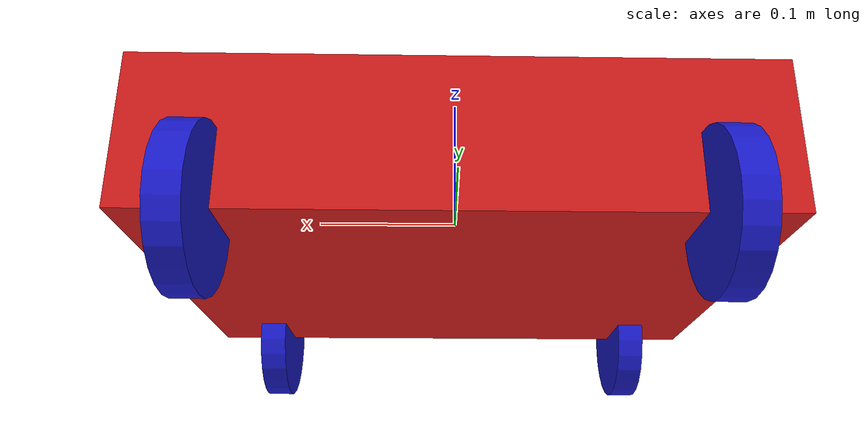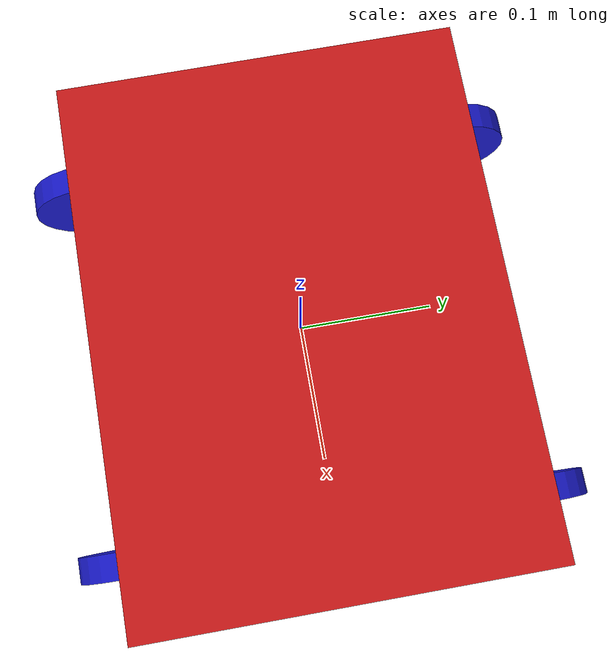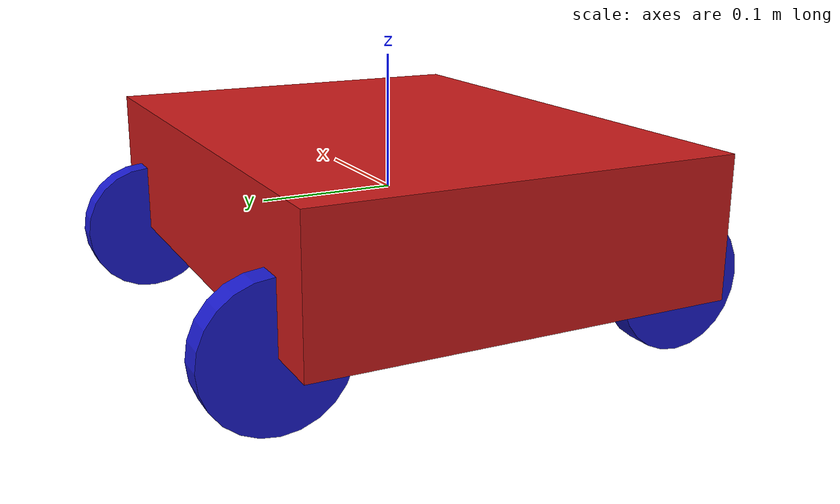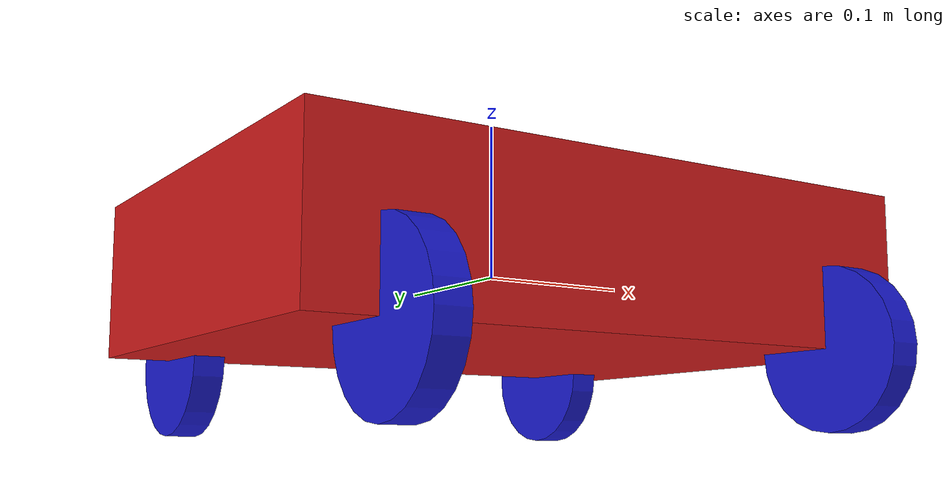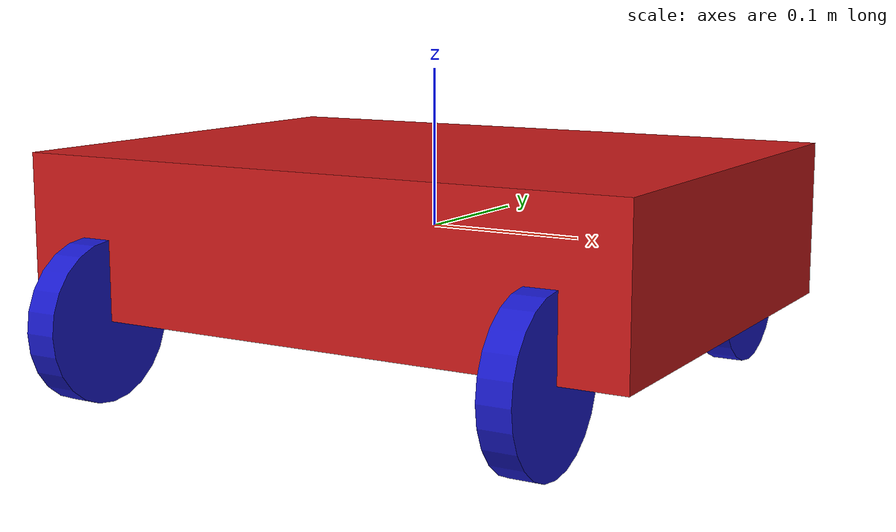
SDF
<?xml version="1.0" ?>
<sdf version="1.7">
  <model name="skid_steer_robot">
    <static>false</static>

    <!-- Base link -->
    <link name="base_link">
      <pose>0 0 0 0 0 0</pose>
      <collision name="base_collision">
        <geometry>
          <box>
            <size>0.4 0.3 0.1</size>
          </box>
        </geometry>
      </collision>
      <visual name="base_visual">
        <geometry>
          <box>
            <size>0.4 0.3 0.1</size>
          </box>
        </geometry>
        <material>
          <ambient>0.8 0.1 0.1 1.0</ambient>
          <diffuse>0.8 0.1 0.1 1.0</diffuse>
        </material>
      </visual>
      <inertial>
        <mass>10.0</mass>
        <inertia>
          <ixx>0.1</ixx>
          <ixy>0</ixy>
          <ixz>0</ixz>
          <iyy>0.1</iyy>
          <iyz>0</iyz>
          <izz>0.1</izz>
        </inertia>
      </inertial>
    </link>

    <!-- Wheels positioned relative to base -->
    <link name="front_left_wheel">
      <pose>0.15 0.15 -0.05 0 1.5708 0</pose>
      <collision name="front_left_wheel_collision">
        <geometry>
          <cylinder>
            <radius>0.05</radius>
            <length>0.02</length>
          </cylinder>
        </geometry>
      </collision>
      <visual name="front_left_wheel_visual">
        <geometry>
          <cylinder>
            <radius>0.05</radius>
            <length>0.02</length>
          </cylinder>
        </geometry>
        <material>
          <ambient>0.1 0.1 0.8 1.0</ambient>
          <diffuse>0.1 0.1 0.8 1.0</diffuse>
        </material>
      </visual>
      <inertial>
        <mass>1.0</mass>
        <inertia>
          <ixx>0.01</ixx>
          <ixy>0</ixy>
          <ixz>0</ixz>
          <iyy>0.01</iyy>
          <iyz>0</iyz>
          <izz>0.01</izz>
        </inertia>
      </inertial>
    </link>

    <link name="front_right_wheel">
      <pose>0.15 -0.15 -0.05 0 1.5708 0</pose>
      <collision name="front_right_wheel_collision">
        <geometry>
          <cylinder>
            <radius>0.05</radius>
            <length>0.02</length>
          </cylinder>
        </geometry>
      </collision>
      <visual name="front_right_wheel_visual">
        <geometry>
          <cylinder>
            <radius>0.05</radius>
            <length>0.02</length>
          </cylinder>
        </geometry>
        <material>
          <ambient>0.1 0.1 0.8 1.0</ambient>
          <diffuse>0.1 0.1 0.8 1.0</diffuse>
        </material>
      </visual>
      <inertial>
        <mass>1.0</mass>
        <inertia>
          <ixx>0.01</ixx>
          <ixy>0</ixy>
          <ixz>0</ixz>
          <iyy>0.01</iyy>
          <iyz>0</iyz>
          <izz>0.01</izz>
        </inertia>
      </inertial>
    </link>

    <link name="rear_left_wheel">
      <pose>-0.15 0.15 -0.05 0 1.5708 0</pose>
      <collision name="rear_left_wheel_collision">
        <geometry>
          <cylinder>
            <radius>0.05</radius>
            <length>0.02</length>
          </cylinder>
        </geometry>
      </collision>
      <visual name="rear_left_wheel_visual">
        <geometry>
          <cylinder>
            <radius>0.05</radius>
            <length>0.02</length>
          </cylinder>
        </geometry>
        <material>
          <ambient>0.1 0.1 0.8 1.0</ambient>
          <diffuse>0.1 0.1 0.8 1.0</diffuse>
        </material>
      </visual>
      <inertial>
        <mass>1.0</mass>
        <inertia>
          <ixx>0.01</ixx>
          <ixy>0</ixy>
          <ixz>0</ixz>
          <iyy>0.01</iyy>
          <iyz>0</iyz>
          <izz>0.01</izz>
        </inertia>
      </inertial>
    </link>

    <link name="rear_right_wheel">
      <pose>-0.15 -0.15 -0.05 0 1.5708 0</pose>
      <collision name="rear_right_wheel_collision">
        <geometry>
          <cylinder>
            <radius>0.05</radius>
            <length>0.02</length>
          </cylinder>
        </geometry>
      </collision>
      <visual name="rear_right_wheel_visual">
        <geometry>
          <cylinder>
            <radius>0.05</radius>
            <length>0.02</length>
          </cylinder>
        </geometry>
        <material>
          <ambient>0.1 0.1 0.8 1.0</ambient>
          <diffuse>0.1 0.1 0.8 1.0</diffuse>
        </material>
      </visual>
      <inertial>
        <mass>1.0</mass>
        <inertia>
          <ixx>0.01</ixx>
          <ixy>0</ixy>
          <ixz>0</ixz>
          <iyy>0.01</iyy>
          <iyz>0</iyz>
          <izz>0.01</izz>
        </inertia>
      </inertial>
    </link>

    <!-- Joints -->
    <joint name="front_left_wheel_joint" type="revolute">
      <parent>base_link</parent>
      <child>front_left_wheel</child>
      <axis>
        <xyz>0 1 0</xyz>
      </axis>
    </joint>

    <joint name="front_right_wheel_joint" type="revolute">
      <parent>base_link</parent>
      <child>front_right_wheel</child>
      <axis>
        <xyz>0 1 0</xyz>
      </axis>
    </joint>

    <joint name="rear_left_wheel_joint" type="revolute">
      <parent>base_link</parent>
      <child>rear_left_wheel</child>
      <axis>
        <xyz>0 1 0</xyz>
      </axis>
    </joint>

    <joint name="rear_right_wheel_joint" type="revolute">
      <parent>base_link</parent>
      <child>rear_right_wheel</child>
      <axis>
        <xyz>0 1 0</xyz>
      </axis>
    </joint>

    <!-- ros2_control plugin -->
    <gazebo>
      <plugin name="ros2_control" filename="libgazebo_ros2_control.so">
        <parameters>$(find skid_steer_robot)/config/ros2_control.yaml</parameters>
      </plugin>
    </gazebo>

  </model>
</sdf>
